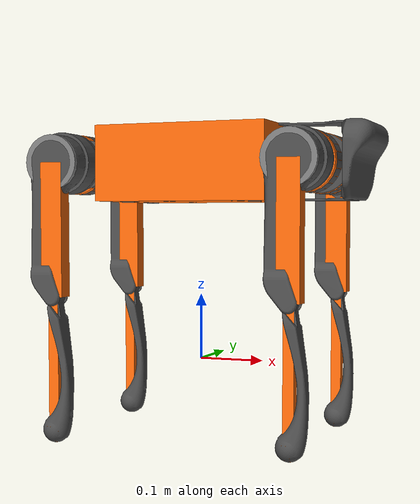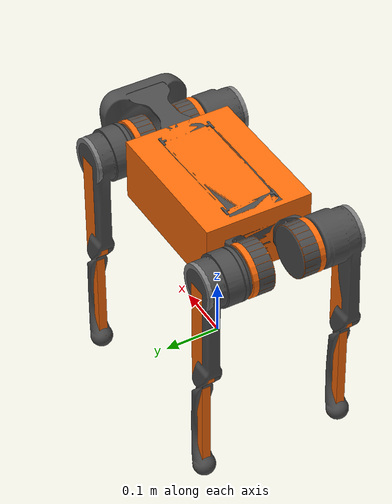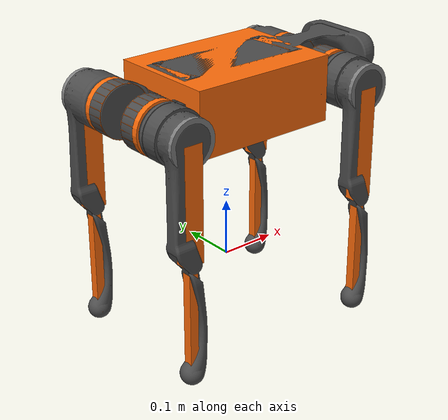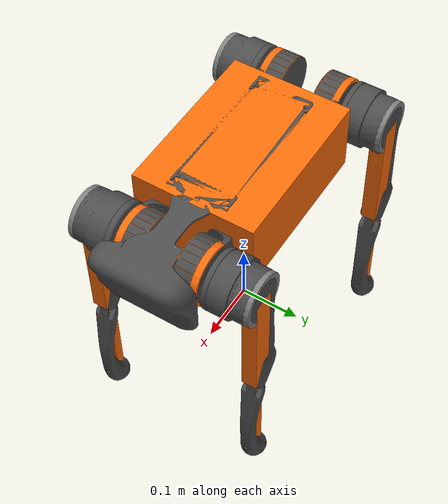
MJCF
<mujoco model="a1_description">
    <compiler angle="radian" />
    <size njmax="500" nconmax="100" />
    <asset>
        <mesh name="trunk" file="meshes/trunk.stl" />
        <mesh name="hip" file="meshes/hip.stl" />
        <mesh name="thigh_mirror" file="meshes/thigh_mirror.stl" />
        <mesh name="thigh" file="meshes/thigh.stl" />
        <mesh name="calf" file="meshes/calf.stl" />
    </asset>
    <default>
        <default class="viz">
            <geom contype="0" conaffinity="0" group="1" type="mesh" />
        </default>
        <default class="collision">
            <geom group="0"/>
        </default>
        <default class="joint_dynamics">
            <joint stiffness="0.5" damping="0.5" armature="0.1"/>
        </default>
    </default>
    <actuator>
        <motor ctrllimited="true" ctrlrange="-1.0 1.0" joint="FR_hip_joint" name="FR_hip_motor" gear="33.5"/>
        <motor ctrllimited="true" ctrlrange="-1.0 1.0" joint="FL_hip_joint" name="FL_hip_motor" gear="33.5"/>
        <motor ctrllimited="true" ctrlrange="-1.0 1.0" joint="RR_hip_joint" name="RR_hip_motor" gear="33.5"/>
        <motor ctrllimited="true" ctrlrange="-1.0 1.0" joint="RL_hip_joint" name="RL_hip_motor" gear="33.5"/>
        <motor ctrllimited="true" ctrlrange="-1.0 1.0" joint="FR_upper_joint" name="FR_upper_motor" gear="33.5"/>
        <motor ctrllimited="true" ctrlrange="-1.0 1.0" joint="FL_upper_joint" name="FL_upper_motor" gear="33.5"/>
        <motor ctrllimited="true" ctrlrange="-1.0 1.0" joint="RR_upper_joint" name="RR_upper_motor" gear="33.5"/>
        <motor ctrllimited="true" ctrlrange="-1.0 1.0" joint="RL_upper_joint" name="RL_upper_motor" gear="33.5"/>
        <motor ctrllimited="true" ctrlrange="-1.0 1.0" joint="FR_lower_joint" name="FR_lower_motor" gear="33.5"/>
        <motor ctrllimited="true" ctrlrange="-1.0 1.0" joint="FL_lower_joint" name="FL_lower_motor" gear="33.5"/>
        <motor ctrllimited="true" ctrlrange="-1.0 1.0" joint="RR_lower_joint" name="RR_lower_motor" gear="33.5"/>
        <motor ctrllimited="true" ctrlrange="-1.0 1.0" joint="RL_lower_joint" name="RL_lower_motor" gear="33.5"/>
    </actuator>

    <worldbody>
        <body name="chassis" pos="0. 0. 0.30">
            <joint name="chassis_joint" type="free" />
            <inertial pos="0.012731 0.002186 0.000515" mass="4.713" fullinertia="0.01683993 0.056579028 0.064713601 8.3902e-05 0.000597679 2.5134e-05"/>
            <geom type="mesh" pos="0 0 0" mesh="trunk" rgba = "0.3 0.3 0.3 1 " class="viz"/>
            <geom size="0.1335 0.097 0.057" type="box" rgba="1 0.423529 0.0392157 1" class="collision"/>
            <body name="FR_hip" pos="0.183 -0.047 0">
               <inertial pos="-0.00330625 -0.000750301 3.09555e-05" quat="0.50785 0.506604 0.491159 0.494169" mass="0.697" diaginertia="0.000907784 0.00065939 0.000575412" />
                <joint name="FR_hip_joint" pos="0 0 0" axis="1 0 0" limited="true" range="-0.802851 0.802851" class="joint_dynamics"/>
                <geom type="mesh" pos="0 0 0" quat="0 1 0 0" mesh="hip" rgba = "0.3 0.3 0.3 1 " class="viz"/>
                <geom size="0.046 0.02" quat="0.707107 0.707107 0 0" type="cylinder" rgba="1 0.423529 0.0392157 1" class = "collision"/>
                <geom size="0.041 0.016" pos="0 -0.081 0" quat="0.707107 0.707107 0 0" type="cylinder" class = "collision"/>
                <body name="FR_upper" pos="0 -0.08505 0">
                    <inertial pos="-0.003237 0.022327 -0.027326" quat="0.999125 -0.00256393 -0.0409531 -0.00806091" mass="1.013" diaginertia="0.00555739 0.00513936 0.00133944" />
                    <joint name="FR_upper_joint" pos="0 0 0" axis="0 1 0" limited="true" range="-1.0472 4.18879" class="joint_dynamics"/>
                    <geom type="mesh" mesh="thigh_mirror" rgba = "0.3 0.3 0.3 1 " class="viz"/>
                    <geom size="0.1 0.01225 0.017" pos="0 0 -0.1" quat="0.707107 0 0.707107 0" type="box" rgba="1 0.423529 0.0392157 1" class="collision" />
                    <body name="FR_lower" pos="0 0 -0.2">
                        <inertial pos="0.00472659 0 -0.131975" quat="0.706886 0.017653 0.017653 0.706886" mass="0.226" diaginertia="0.00340344 0.00339393 3.54834e-05" />
                        <joint name="FR_lower_joint" pos="0 0 0" axis="0 1 0" limited="true" range="-2.69653 -0.916298" class="joint_dynamics" />
                        <geom type="mesh" mesh="calf" rgba = "0.3 0.3 0.3 1 " class="viz"/>
                        <geom size="0.1 0.008 0.008" pos="0 0 -0.1" quat="0.707107 0 0.707107 0" type="box" rgba="1 0.423529 0.0392157 1" class="collision"/>
                        <geom size="0.02" pos="0 0 -0.2" rgba="1 0.423529 0.0392157 1" class="collision"/>
                    </body>
                </body>
            </body>
            <body name="FL_hip" pos="0.183 0.047 0">
                <inertial pos="-0.00330625 0.000750301 3.09555e-05" quat="0.494169 0.491159 0.506604 0.50785" mass="0.697" diaginertia="0.000907784 0.00065939 0.000575412" />
                <joint name="FL_hip_joint" pos="0 0 0" axis="1 0 0" limited="true" range="-0.802851 0.802851" class="joint_dynamics"/>
                <geom type="mesh" mesh="hip" rgba = "0.3 0.3 0.3 1 " class="viz"/>
                <geom size="0.046 0.02" quat="0.707107 0.707107 0 0" type="cylinder" rgba="1 0.423529 0.0392157 1"  class="collision"/>
                <geom size="0.041 0.016" pos="0 0.081 0" quat="0.707107 0.707107 0 0" type="cylinder" class="collision" />
                <body name="FL_upper" pos="0 0.08505 0">
                    <inertial pos="-0.003237 -0.022327 -0.027326" quat="0.999125 0.00256393 -0.0409531 0.00806091" mass="1.013" diaginertia="0.00555739 0.00513936 0.00133944" />
                    <joint name="FL_upper_joint" pos="0 0 0" axis="0 1 0" limited="true" range="-1.0472 4.18879" class="joint_dynamics"/>
                    <geom type="mesh" mesh="thigh" rgba = "0.3 0.3 0.3 1 " class="viz"/>
                    <geom size="0.1 0.01225 0.017" pos="0 0 -0.1" quat="0.707107 0 0.707107 0" type="box" rgba="1 0.423529 0.0392157 1" class="collision" />
                    <body name="FL_lower" pos="0 0 -0.2">
                        <inertial pos="0.00472659 0 -0.131975" quat="0.706886 0.017653 0.017653 0.706886" mass="0.226" diaginertia="0.00340344 0.00339393 3.54834e-05" />
                        <joint name="FL_lower_joint" pos="0 0 0" axis="0 1 0" limited="true" range="-2.69653 -0.916298" class="joint_dynamics"/>
                        <geom type="mesh" mesh="calf" rgba = "0.3 0.3 0.3 1 " class="viz" />
                        <geom size="0.1 0.008 0.008" pos="0 0 -0.1" quat="0.707107 0 0.707107 0" type="box" rgba="1 0.423529 0.0392157 1" class="collision"  />
                        <geom size="0.02" pos="0 0 -0.2" rgba="1 0.423529 0.0392157 1" class="collision" />
                    </body>
                </body>
            </body>
            <body name="RR_hip" pos="-0.183 -0.047 0">
                <inertial pos="0.00330625 -0.000750301 3.09555e-05" quat="0.491159 0.494169 0.50785 0.506604" mass="0.697" diaginertia="0.000907784 0.00065939 0.000575412" />
                <joint name="RR_hip_joint" pos="0 0 0" axis="1 0 0" limited="true" range="-0.802851 0.802851" class="joint_dynamics" />
                <geom type="mesh" mesh="hip" quat="0 0 0 1" rgba = "0.3 0.3 0.3 1 " class="viz"/>
                <geom size="0.046 0.02" quat="0.707107 0.707107 0 0" type="cylinder" rgba="1 0.423529 0.0392157 1" class="collision" />
                <geom size="0.041 0.016" pos="0 -0.081 0" quat="0.707107 0.707107 0 0" type="cylinder" class="collision"/>
                <body name="RR_upper" pos="0 -0.08505 0">
                    <inertial pos="-0.003237 0.022327 -0.027326" quat="0.999125 -0.00256393 -0.0409531 -0.00806091" mass="1.013" diaginertia="0.00555739 0.00513936 0.00133944" />
                    <joint name="RR_upper_joint" pos="0 0 0" axis="0 1 0" limited="true" range="-1.0472 4.18879" class="joint_dynamics" />
                    <geom type="mesh" mesh="thigh_mirror" rgba = "0.3 0.3 0.3 1 " class="viz"/>
                    <geom size="0.1 0.01225 0.017" pos="0 0 -0.1" quat="0.707107 0 0.707107 0" type="box" rgba="1 0.423529 0.0392157 1" class="collision" />
                    <body name="RR_lower" pos="0 0 -0.2">
                        <inertial pos="0.00472659 0 -0.131975" quat="0.706886 0.017653 0.017653 0.706886" mass="0.226" diaginertia="0.00340344 0.00339393 3.54834e-05" />
                        <joint name="RR_lower_joint" pos="0 0 0" axis="0 1 0" limited="true" range="-2.69653 -0.916298" class="joint_dynamics"/>
                        <geom type="mesh" mesh="calf" rgba = "0.3 0.3 0.3 1 " class="viz" />
                        <geom size="0.1 0.008 0.008" pos="0 0 -0.1" quat="0.707107 0 0.707107 0" type="box" rgba="1 0.423529 0.0392157 1" class="collision" />
                        <geom size="0.02" pos="0 0 -0.2" rgba="1 0.423529 0.0392157 1" class="collision" />
                    </body>
                </body>
            </body>
            <body name="RL_hip" pos="-0.183 0.047 0">
                <inertial pos="0.00330625 0.000750301 3.09555e-05" quat="0.506604 0.50785 0.494169 0.491159" mass="0.697" diaginertia="0.000907784 0.00065939 0.000575412" />
                <joint name="RL_hip_joint" pos="0 0 0" axis="1 0 0" limited="true" range="-0.802851 0.802851" class="joint_dynamics"/>
                <geom type="mesh" mesh="hip" quat="0 0 1 0" rgba = "0.3 0.3 0.3 1 " class="viz" />
                <geom size="0.046 0.02" quat="0.707107 0.707107 0 0" type="cylinder" rgba="1 0.423529 0.0392157 1" class="collision" />
                <geom size="0.041 0.016" pos="0 0.081 0" quat="0.707107 0.707107 0 0" type="cylinder" class="collision" />
                <body name="RL_upper" pos="0 0.08505 0">
                    <inertial pos="-0.003237 -0.022327 -0.027326" quat="0.999125 0.00256393 -0.0409531 0.00806091" mass="1.013" diaginertia="0.00555739 0.00513936 0.00133944" />
                    <joint name="RL_upper_joint" pos="0 0 0" axis="0 1 0" limited="true" range="-1.0472 4.18879" class="joint_dynamics" />
                    <geom type="mesh" mesh="thigh" rgba = "0.3 0.3 0.3 1 " class="viz"/>
                    <geom size="0.1 0.01225 0.017" pos="0 0 -0.1" quat="0.707107 0 0.707107 0" type="box" rgba="1 0.423529 0.0392157 1" class="collision"/>
                    <body name="RL_lower" pos="0 0 -0.2">
                        <inertial pos="0.00472659 0 -0.131975" quat="0.706886 0.017653 0.017653 0.706886" mass="0.226" diaginertia="0.00340344 0.00339393 3.54834e-05" />
                        <joint name="RL_lower_joint" pos="0 0 0" axis="0 1 0" limited="true" range="-2.69653 -0.916298" class="joint_dynamics"/>
                        <geom type="mesh" mesh="calf" rgba = "0.3 0.3 0.3 1 " class="viz" />
                        <geom size="0.1 0.008 0.008" pos="0 0 -0.1" quat="0.707107 0 0.707107 0" type="box" rgba="1 0.423529 0.0392157 1"  class="collision"/>
                        <geom size="0.02" pos="0 0 -0.2" rgba="1 0.423529 0.0392157 1"  class="collision"/>
                    </body>
                </body>
            </body>
        </body>
    </worldbody>
</mujoco>
